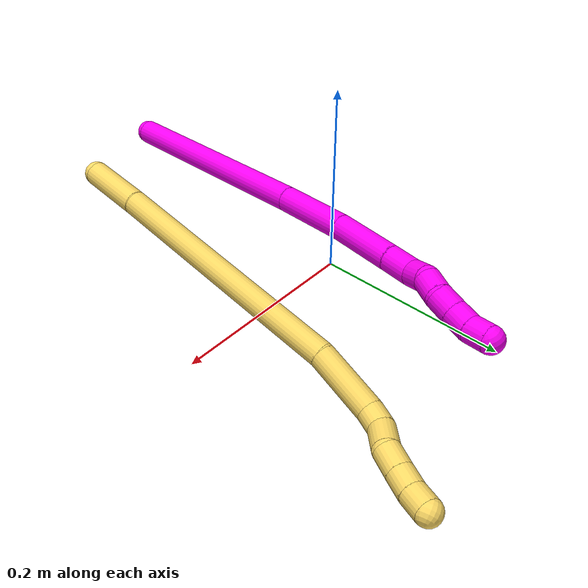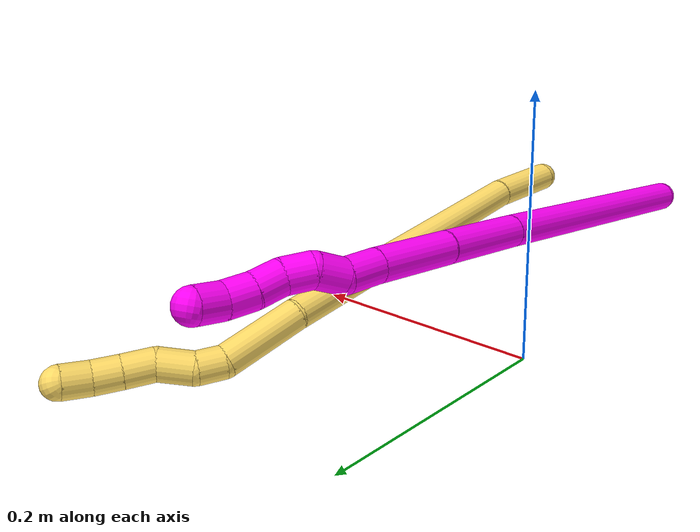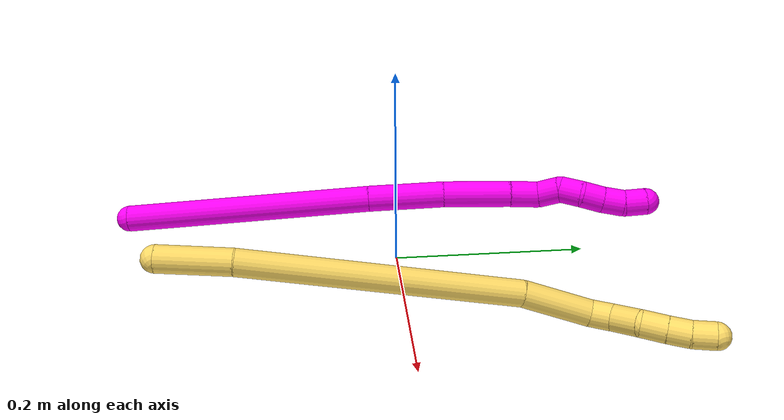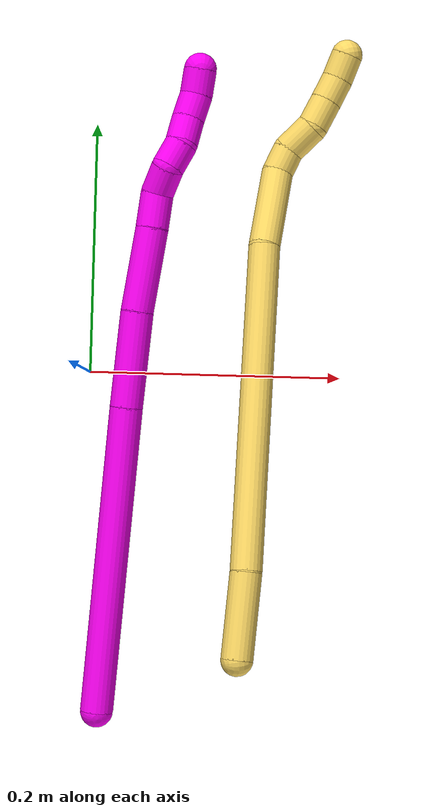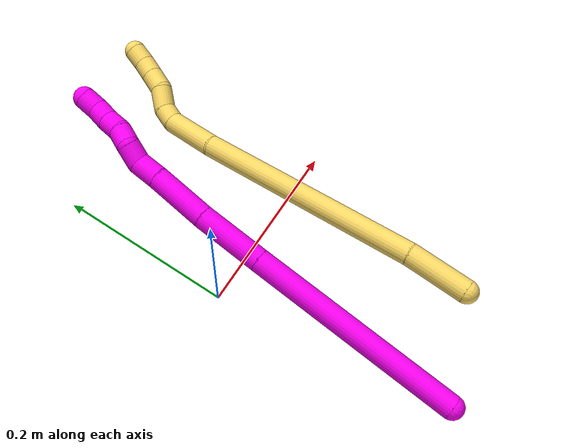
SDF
<sdf version="1.7">
 <world name="default">
  <model name="5">
   <static>0</static>
   <link name="5">
    <collision name="collision-cylinder-e_1_1_4">
     <pose>-0.011076 0.029983 0.010319 -1.23933 -0.33605 0.240849</pose>
     <geometry><cylinder><radius>0.0125</radius><length>0.067176</length></cylinder></geometry>
     <surface>
      <friction><ode><mu>1.16</mu><mu2>1.16</mu2><slip1>0</slip1><slip2>0</slip2></ode></friction>
      <contact><ode><kp>1e+06</kp><kd>1</kd><max_vel>0</max_vel><min_depth>0.001</min_depth></ode></contact>
     </surface>
    </collision>
    <visual name="visual-cylinder-e_1_1_4">
     <pose>-0.011076 0.029983 0.010319 -1.23933 -0.33605 0.240849</pose>
     <geometry><cylinder><radius>0.0125</radius><length>0.067176</length></cylinder></geometry>
     <material><ambient>1 0.858824 0.4 1</ambient></material>
    </visual>
    <collision name="collision-cylinder-e_2_4_5">
     <pose>-0.05094 0.178848 0.060157 -1.24987 -0.225871 0.163272</pose>
     <geometry><cylinder><radius>0.0125</radius><length>0.257087</length></cylinder></geometry>
     <surface>
      <friction><ode><mu>1.16</mu><mu2>1.16</mu2><slip1>0</slip1><slip2>0</slip2></ode></friction>
      <contact><ode><kp>1e+06</kp><kd>1</kd><max_vel>0</max_vel><min_depth>0.001</min_depth></ode></contact>
     </surface>
    </collision>
    <visual name="visual-cylinder-e_2_4_5">
     <pose>-0.05094 0.178848 0.060157 -1.24987 -0.225871 0.163272</pose>
     <geometry><cylinder><radius>0.0125</radius><length>0.257087</length></cylinder></geometry>
     <material><ambient>1 0.858824 0.4 1</ambient></material>
    </visual>
    <collision name="collision-cylinder-e_3_5_6">
     <pose>-0.084088 0.326309 0.114238 -1.09956 -0.135103 0.08287</pose>
     <geometry><cylinder><radius>0.0125</radius><length>0.064739</length></cylinder></geometry>
     <surface>
      <friction><ode><mu>1.16</mu><mu2>1.16</mu2><slip1>0</slip1><slip2>0</slip2></ode></friction>
      <contact><ode><kp>1e+06</kp><kd>1</kd><max_vel>0</max_vel><min_depth>0.001</min_depth></ode></contact>
     </surface>
    </collision>
    <visual name="visual-cylinder-e_3_5_6">
     <pose>-0.084088 0.326309 0.114238 -1.09956 -0.135103 0.08287</pose>
     <geometry><cylinder><radius>0.0125</radius><length>0.064739</length></cylinder></geometry>
     <material><ambient>1 0.858824 0.4 1</ambient></material>
    </visual>
    <collision name="collision-cylinder-e_4_6_7">
     <pose>-0.092929 0.362057 0.13462 -0.888862 -0.45181 0.218023</pose>
     <geometry><cylinder><radius>0.0125</radius><length>0.02053</length></cylinder></geometry>
     <surface>
      <friction><ode><mu>1.16</mu><mu2>1.16</mu2><slip1>0</slip1><slip2>0</slip2></ode></friction>
      <contact><ode><kp>1e+06</kp><kd>1</kd><max_vel>0</max_vel><min_depth>0.001</min_depth></ode></contact>
     </surface>
    </collision>
    <visual name="visual-cylinder-e_4_6_7">
     <pose>-0.092929 0.362057 0.13462 -0.888862 -0.45181 0.218023</pose>
     <geometry><cylinder><radius>0.0125</radius><length>0.02053</length></cylinder></geometry>
     <material><ambient>1 0.858824 0.4 1</ambient></material>
    </visual>
    <collision name="collision-cylinder-e_5_7_8">
     <pose>-0.105926 0.373882 0.149602 -0.470155 -0.692006 0.172259</pose>
     <geometry><cylinder><radius>0.0125</radius><length>0.026691</length></cylinder></geometry>
     <surface>
      <friction><ode><mu>1.16</mu><mu2>1.16</mu2><slip1>0</slip1><slip2>0</slip2></ode></friction>
      <contact><ode><kp>1e+06</kp><kd>1</kd><max_vel>0</max_vel><min_depth>0.001</min_depth></ode></contact>
     </surface>
    </collision>
    <visual name="visual-cylinder-e_5_7_8">
     <pose>-0.105926 0.373882 0.149602 -0.470155 -0.692006 0.172259</pose>
     <geometry><cylinder><radius>0.0125</radius><length>0.026691</length></cylinder></geometry>
     <material><ambient>1 0.858824 0.4 1</ambient></material>
    </visual>
    <collision name="collision-cylinder-e_6_8_9">
     <pose>-0.119345 0.386341 0.165675 -0.845865 -0.439585 0.20043</pose>
     <geometry><cylinder><radius>0.0125</radius><length>0.023042</length></cylinder></geometry>
     <surface>
      <friction><ode><mu>1.16</mu><mu2>1.16</mu2><slip1>0</slip1><slip2>0</slip2></ode></friction>
      <contact><ode><kp>1e+06</kp><kd>1</kd><max_vel>0</max_vel><min_depth>0.001</min_depth></ode></contact>
     </surface>
    </collision>
    <visual name="visual-cylinder-e_6_8_9">
     <pose>-0.119345 0.386341 0.165675 -0.845865 -0.439585 0.20043</pose>
     <geometry><cylinder><radius>0.0125</radius><length>0.023042</length></cylinder></geometry>
     <material><ambient>1 0.858824 0.4 1</ambient></material>
    </visual>
    <collision name="collision-cylinder-e_7_9_10">
     <pose>-0.128803 0.400981 0.17844 -0.862832 -0.468612 0.218877</pose>
     <geometry><cylinder><radius>0.0125</radius><length>0.02017</length></cylinder></geometry>
     <surface>
      <friction><ode><mu>1.16</mu><mu2>1.16</mu2><slip1>0</slip1><slip2>0</slip2></ode></friction>
      <contact><ode><kp>1e+06</kp><kd>1</kd><max_vel>0</max_vel><min_depth>0.001</min_depth></ode></contact>
     </surface>
    </collision>
    <visual name="visual-cylinder-e_7_9_10">
     <pose>-0.128803 0.400981 0.17844 -0.862832 -0.468612 0.218877</pose>
     <geometry><cylinder><radius>0.0125</radius><length>0.02017</length></cylinder></geometry>
     <material><ambient>1 0.858824 0.4 1</ambient></material>
    </visual>
    <collision name="collision-cylinder-e_8_10_2">
     <pose>-0.138834 0.415087 0.189074 -0.988904 -0.561647 0.308543</pose>
     <geometry><cylinder><radius>0.0125</radius><length>0.020565</length></cylinder></geometry>
     <surface>
      <friction><ode><mu>1.16</mu><mu2>1.16</mu2><slip1>0</slip1><slip2>0</slip2></ode></friction>
      <contact><ode><kp>1e+06</kp><kd>1</kd><max_vel>0</max_vel><min_depth>0.001</min_depth></ode></contact>
     </surface>
    </collision>
    <visual name="visual-cylinder-e_8_10_2">
     <pose>-0.138834 0.415087 0.189074 -0.988904 -0.561647 0.308543</pose>
     <geometry><cylinder><radius>0.0125</radius><length>0.020565</length></cylinder></geometry>
     <material><ambient>1 0.858824 0.4 1</ambient></material>
    </visual>
    <collision name="collision-sphere-2">
     <pose>-0.14431 0.422358 0.193857 0 -0 0</pose>
     <geometry><sphere><radius>0.0125</radius></sphere></geometry>
     <surface>
      <friction><ode><mu>1.16</mu><mu2>1.16</mu2><slip1>0</slip1><slip2>0</slip2></ode></friction>
      <contact><ode><kp>1e+06</kp><kd>1</kd><max_vel>0</max_vel><min_depth>0.001</min_depth></ode></contact>
     </surface>
    </collision>
    <visual name="visual-sphere-2">
     <pose>-0.14431 0.422358 0.193857 0 -0 0</pose>
     <geometry><sphere><radius>0.0125</radius></sphere></geometry>
     <material><ambient>1 0.858824 0.4 1</ambient></material>
    </visual>
    <collision name="collision-sphere-10">
     <pose>-0.133358 0.407817 0.184291 0 -0 0</pose>
     <geometry><sphere><radius>0.0125</radius></sphere></geometry>
     <surface>
      <friction><ode><mu>1.16</mu><mu2>1.16</mu2><slip1>0</slip1><slip2>0</slip2></ode></friction>
      <contact><ode><kp>1e+06</kp><kd>1</kd><max_vel>0</max_vel><min_depth>0.001</min_depth></ode></contact>
     </surface>
    </collision>
    <visual name="visual-sphere-10">
     <pose>-0.133358 0.407817 0.184291 0 -0 0</pose>
     <geometry><sphere><radius>0.0125</radius></sphere></geometry>
     <material><ambient>1 0.858824 0.4 1</ambient></material>
    </visual>
    <collision name="collision-sphere-9">
     <pose>-0.124248 0.394145 0.172588 0 -0 0</pose>
     <geometry><sphere><radius>0.0125</radius></sphere></geometry>
     <surface>
      <friction><ode><mu>1.16</mu><mu2>1.16</mu2><slip1>0</slip1><slip2>0</slip2></ode></friction>
      <contact><ode><kp>1e+06</kp><kd>1</kd><max_vel>0</max_vel><min_depth>0.001</min_depth></ode></contact>
     </surface>
    </collision>
    <visual name="visual-sphere-9">
     <pose>-0.124248 0.394145 0.172588 0 -0 0</pose>
     <geometry><sphere><radius>0.0125</radius></sphere></geometry>
     <material><ambient>1 0.858824 0.4 1</ambient></material>
    </visual>
    <collision name="collision-sphere-4">
     <pose>-0.022152 0.059966 0.020638 0 -0 0</pose>
     <geometry><sphere><radius>0.0125</radius></sphere></geometry>
     <surface>
      <friction><ode><mu>1.16</mu><mu2>1.16</mu2><slip1>0</slip1><slip2>0</slip2></ode></friction>
      <contact><ode><kp>1e+06</kp><kd>1</kd><max_vel>0</max_vel><min_depth>0.001</min_depth></ode></contact>
     </surface>
    </collision>
    <visual name="visual-sphere-4">
     <pose>-0.022152 0.059966 0.020638 0 -0 0</pose>
     <geometry><sphere><radius>0.0125</radius></sphere></geometry>
     <material><ambient>1 0.858824 0.4 1</ambient></material>
    </visual>
    <collision name="collision-sphere-1">
     <geometry><sphere><radius>0.0125</radius></sphere></geometry>
     <surface>
      <friction><ode><mu>1.16</mu><mu2>1.16</mu2><slip1>0</slip1><slip2>0</slip2></ode></friction>
      <contact><ode><kp>1e+06</kp><kd>1</kd><max_vel>0</max_vel><min_depth>0.001</min_depth></ode></contact>
     </surface>
    </collision>
    <visual name="visual-sphere-1">
     <geometry><sphere><radius>0.0125</radius></sphere></geometry>
     <material><ambient>1 0.858824 0.4 1</ambient></material>
    </visual>
    <collision name="collision-sphere-8">
     <pose>-0.114442 0.378537 0.158762 0 -0 0</pose>
     <geometry><sphere><radius>0.0125</radius></sphere></geometry>
     <surface>
      <friction><ode><mu>1.16</mu><mu2>1.16</mu2><slip1>0</slip1><slip2>0</slip2></ode></friction>
      <contact><ode><kp>1e+06</kp><kd>1</kd><max_vel>0</max_vel><min_depth>0.001</min_depth></ode></contact>
     </surface>
    </collision>
    <visual name="visual-sphere-8">
     <pose>-0.114442 0.378537 0.158762 0 -0 0</pose>
     <geometry><sphere><radius>0.0125</radius></sphere></geometry>
     <material><ambient>1 0.858824 0.4 1</ambient></material>
    </visual>
    <collision name="collision-sphere-5">
     <pose>-0.079728 0.29773 0.099677 0 -0 0</pose>
     <geometry><sphere><radius>0.0125</radius></sphere></geometry>
     <surface>
      <friction><ode><mu>1.16</mu><mu2>1.16</mu2><slip1>0</slip1><slip2>0</slip2></ode></friction>
      <contact><ode><kp>1e+06</kp><kd>1</kd><max_vel>0</max_vel><min_depth>0.001</min_depth></ode></contact>
     </surface>
    </collision>
    <visual name="visual-sphere-5">
     <pose>-0.079728 0.29773 0.099677 0 -0 0</pose>
     <geometry><sphere><radius>0.0125</radius></sphere></geometry>
     <material><ambient>1 0.858824 0.4 1</ambient></material>
    </visual>
    <collision name="collision-sphere-6">
     <pose>-0.088448 0.354888 0.1288 0 -0 0</pose>
     <geometry><sphere><radius>0.0125</radius></sphere></geometry>
     <surface>
      <friction><ode><mu>1.16</mu><mu2>1.16</mu2><slip1>0</slip1><slip2>0</slip2></ode></friction>
      <contact><ode><kp>1e+06</kp><kd>1</kd><max_vel>0</max_vel><min_depth>0.001</min_depth></ode></contact>
     </surface>
    </collision>
    <visual name="visual-sphere-6">
     <pose>-0.088448 0.354888 0.1288 0 -0 0</pose>
     <geometry><sphere><radius>0.0125</radius></sphere></geometry>
     <material><ambient>1 0.858824 0.4 1</ambient></material>
    </visual>
    <collision name="collision-sphere-7">
     <pose>-0.097411 0.369227 0.140441 0 -0 0</pose>
     <geometry><sphere><radius>0.0125</radius></sphere></geometry>
     <surface>
      <friction><ode><mu>1.16</mu><mu2>1.16</mu2><slip1>0</slip1><slip2>0</slip2></ode></friction>
      <contact><ode><kp>1e+06</kp><kd>1</kd><max_vel>0</max_vel><min_depth>0.001</min_depth></ode></contact>
     </surface>
    </collision>
    <visual name="visual-sphere-7">
     <pose>-0.097411 0.369227 0.140441 0 -0 0</pose>
     <geometry><sphere><radius>0.0125</radius></sphere></geometry>
     <material><ambient>1 0.858824 0.4 1</ambient></material>
    </visual>
    <inertial>
     <pose>-0.064444 0.224114 0.083233 0 -0 0</pose>
     <mass>0.5</mass>
     <inertia>
      <ixx>0.001654</ixx>
      <ixy>0</ixy>
      <ixz>0</ixz>
      <iyy>0.000791</iyy>
      <iyz>0</iyz>
      <izz>-0.00102</izz>
     </inertia>
    </inertial>
   </link>
   <pose>0.123739 -0.218597 0.078493 -2.62881 1.05153 -2.32787</pose>
  </model>
  <model name="10">
   <static>0</static>
   <link name="10">
    <collision name="collision-cylinder-e_1_1_4">
     <pose>-0.015131 0.108359 -0.039736 -1.92228 -0.130359 0.186375</pose>
     <geometry><cylinder><radius>0.0125</radius><length>0.232805</length></cylinder></geometry>
     <surface>
      <friction><ode><mu>1.16</mu><mu2>1.16</mu2><slip1>0</slip1><slip2>0</slip2></ode></friction>
      <contact><ode><kp>1e+06</kp><kd>1</kd><max_vel>0</max_vel><min_depth>0.001</min_depth></ode></contact>
     </surface>
    </collision>
    <visual name="visual-cylinder-e_1_1_4">
     <pose>-0.015131 0.108359 -0.039736 -1.92228 -0.130359 0.186375</pose>
     <geometry><cylinder><radius>0.0125</radius><length>0.232805</length></cylinder></geometry>
     <material><ambient>1 0 0.964706 1</ambient></material>
    </visual>
    <collision name="collision-cylinder-e_2_4_5">
     <pose>-0.034351 0.25045 -0.092474 -1.93869 -0.112625 0.163917</pose>
     <geometry><cylinder><radius>0.0125</radius><length>0.072764</length></cylinder></geometry>
     <surface>
      <friction><ode><mu>1.16</mu><mu2>1.16</mu2><slip1>0</slip1><slip2>0</slip2></ode></friction>
      <contact><ode><kp>1e+06</kp><kd>1</kd><max_vel>0</max_vel><min_depth>0.001</min_depth></ode></contact>
     </surface>
    </collision>
    <visual name="visual-cylinder-e_2_4_5">
     <pose>-0.034351 0.25045 -0.092474 -1.93869 -0.112625 0.163917</pose>
     <geometry><cylinder><radius>0.0125</radius><length>0.072764</length></cylinder></geometry>
     <material><ambient>1 0 0.964706 1</ambient></material>
    </visual>
    <collision name="collision-cylinder-e_3_5_6">
     <pose>-0.039868 0.313852 -0.11747 -1.95495 -0.044576 0.066086</pose>
     <geometry><cylinder><radius>0.0125</radius><length>0.064068</length></cylinder></geometry>
     <surface>
      <friction><ode><mu>1.16</mu><mu2>1.16</mu2><slip1>0</slip1><slip2>0</slip2></ode></friction>
      <contact><ode><kp>1e+06</kp><kd>1</kd><max_vel>0</max_vel><min_depth>0.001</min_depth></ode></contact>
     </surface>
    </collision>
    <visual name="visual-cylinder-e_3_5_6">
     <pose>-0.039868 0.313852 -0.11747 -1.95495 -0.044576 0.066086</pose>
     <geometry><cylinder><radius>0.0125</radius><length>0.064068</length></cylinder></geometry>
     <material><ambient>1 0 0.964706 1</ambient></material>
    </visual>
    <collision name="collision-cylinder-e_4_6_7">
     <pose>-0.042201 0.355931 -0.135211 -2.00459 -0.066141 0.103476</pose>
     <geometry><cylinder><radius>0.0125</radius><length>0.02741</length></cylinder></geometry>
     <surface>
      <friction><ode><mu>1.16</mu><mu2>1.16</mu2><slip1>0</slip1><slip2>0</slip2></ode></friction>
      <contact><ode><kp>1e+06</kp><kd>1</kd><max_vel>0</max_vel><min_depth>0.001</min_depth></ode></contact>
     </surface>
    </collision>
    <visual name="visual-cylinder-e_4_6_7">
     <pose>-0.042201 0.355931 -0.135211 -2.00459 -0.066141 0.103476</pose>
     <geometry><cylinder><radius>0.0125</radius><length>0.02741</length></cylinder></geometry>
     <material><ambient>1 0 0.964706 1</ambient></material>
    </visual>
    <collision name="collision-cylinder-e_5_7_8">
     <pose>-0.042008 0.379278 -0.140843 -1.56019 0.100123 -0.099069</pose>
     <geometry><cylinder><radius>0.0125</radius><length>0.021988</length></cylinder></geometry>
     <surface>
      <friction><ode><mu>1.16</mu><mu2>1.16</mu2><slip1>0</slip1><slip2>0</slip2></ode></friction>
      <contact><ode><kp>1e+06</kp><kd>1</kd><max_vel>0</max_vel><min_depth>0.001</min_depth></ode></contact>
     </surface>
    </collision>
    <visual name="visual-cylinder-e_5_7_8">
     <pose>-0.042008 0.379278 -0.140843 -1.56019 0.100123 -0.099069</pose>
     <geometry><cylinder><radius>0.0125</radius><length>0.021988</length></cylinder></geometry>
     <material><ambient>1 0 0.964706 1</ambient></material>
    </visual>
    <collision name="collision-cylinder-e_6_8_9">
     <pose>-0.037826 0.399161 -0.144676 -1.98657 0.305455 -0.463939</pose>
     <geometry><cylinder><radius>0.0125</radius><length>0.020504</length></cylinder></geometry>
     <surface>
      <friction><ode><mu>1.16</mu><mu2>1.16</mu2><slip1>0</slip1><slip2>0</slip2></ode></friction>
      <contact><ode><kp>1e+06</kp><kd>1</kd><max_vel>0</max_vel><min_depth>0.001</min_depth></ode></contact>
     </surface>
    </collision>
    <visual name="visual-cylinder-e_6_8_9">
     <pose>-0.037826 0.399161 -0.144676 -1.98657 0.305455 -0.463939</pose>
     <geometry><cylinder><radius>0.0125</radius><length>0.020504</length></cylinder></geometry>
     <material><ambient>1 0 0.964706 1</ambient></material>
    </visual>
    <collision name="collision-cylinder-e_7_9_10">
     <pose>-0.033896 0.416327 -0.154491 -2.19043 0.083635 -0.162133</pose>
     <geometry><cylinder><radius>0.0125</radius><length>0.020271</length></cylinder></geometry>
     <surface>
      <friction><ode><mu>1.16</mu><mu2>1.16</mu2><slip1>0</slip1><slip2>0</slip2></ode></friction>
      <contact><ode><kp>1e+06</kp><kd>1</kd><max_vel>0</max_vel><min_depth>0.001</min_depth></ode></contact>
     </surface>
    </collision>
    <visual name="visual-cylinder-e_7_9_10">
     <pose>-0.033896 0.416327 -0.154491 -2.19043 0.083635 -0.162133</pose>
     <geometry><cylinder><radius>0.0125</radius><length>0.020271</length></cylinder></geometry>
     <material><ambient>1 0 0.964706 1</ambient></material>
    </visual>
    <collision name="collision-cylinder-e_8_10_11">
     <pose>-0.031846 0.433398 -0.164955 -2.05018 0.120101 -0.197385</pose>
     <geometry><cylinder><radius>0.0125</radius><length>0.020089</length></cylinder></geometry>
     <surface>
      <friction><ode><mu>1.16</mu><mu2>1.16</mu2><slip1>0</slip1><slip2>0</slip2></ode></friction>
      <contact><ode><kp>1e+06</kp><kd>1</kd><max_vel>0</max_vel><min_depth>0.001</min_depth></ode></contact>
     </surface>
    </collision>
    <visual name="visual-cylinder-e_8_10_11">
     <pose>-0.031846 0.433398 -0.164955 -2.05018 0.120101 -0.197385</pose>
     <geometry><cylinder><radius>0.0125</radius><length>0.020089</length></cylinder></geometry>
     <material><ambient>1 0 0.964706 1</ambient></material>
    </visual>
    <collision name="collision-cylinder-e_9_11_2">
     <pose>-0.031412 0.45181 -0.172544 -1.8737 -0.076622 0.10418</pose>
     <geometry><cylinder><radius>0.0125</radius><length>0.0201</length></cylinder></geometry>
     <surface>
      <friction><ode><mu>1.16</mu><mu2>1.16</mu2><slip1>0</slip1><slip2>0</slip2></ode></friction>
      <contact><ode><kp>1e+06</kp><kd>1</kd><max_vel>0</max_vel><min_depth>0.001</min_depth></ode></contact>
     </surface>
    </collision>
    <visual name="visual-cylinder-e_9_11_2">
     <pose>-0.031412 0.45181 -0.172544 -1.8737 -0.076622 0.10418</pose>
     <geometry><cylinder><radius>0.0125</radius><length>0.0201</length></cylinder></geometry>
     <material><ambient>1 0 0.964706 1</ambient></material>
    </visual>
    <collision name="collision-sphere-2">
     <pose>-0.032181 0.461375 -0.175533 0 -0 0</pose>
     <geometry><sphere><radius>0.0125</radius></sphere></geometry>
     <surface>
      <friction><ode><mu>1.16</mu><mu2>1.16</mu2><slip1>0</slip1><slip2>0</slip2></ode></friction>
      <contact><ode><kp>1e+06</kp><kd>1</kd><max_vel>0</max_vel><min_depth>0.001</min_depth></ode></contact>
     </surface>
    </collision>
    <visual name="visual-sphere-2">
     <pose>-0.032181 0.461375 -0.175533 0 -0 0</pose>
     <geometry><sphere><radius>0.0125</radius></sphere></geometry>
     <material><ambient>1 0 0.964706 1</ambient></material>
    </visual>
    <collision name="collision-sphere-11">
     <pose>-0.030642 0.442246 -0.169555 0 -0 0</pose>
     <geometry><sphere><radius>0.0125</radius></sphere></geometry>
     <surface>
      <friction><ode><mu>1.16</mu><mu2>1.16</mu2><slip1>0</slip1><slip2>0</slip2></ode></friction>
      <contact><ode><kp>1e+06</kp><kd>1</kd><max_vel>0</max_vel><min_depth>0.001</min_depth></ode></contact>
     </surface>
    </collision>
    <visual name="visual-sphere-11">
     <pose>-0.030642 0.442246 -0.169555 0 -0 0</pose>
     <geometry><sphere><radius>0.0125</radius></sphere></geometry>
     <material><ambient>1 0 0.964706 1</ambient></material>
    </visual>
    <collision name="collision-sphere-10">
     <pose>-0.033049 0.424549 -0.160356 0 -0 0</pose>
     <geometry><sphere><radius>0.0125</radius></sphere></geometry>
     <surface>
      <friction><ode><mu>1.16</mu><mu2>1.16</mu2><slip1>0</slip1><slip2>0</slip2></ode></friction>
      <contact><ode><kp>1e+06</kp><kd>1</kd><max_vel>0</max_vel><min_depth>0.001</min_depth></ode></contact>
     </surface>
    </collision>
    <visual name="visual-sphere-10">
     <pose>-0.033049 0.424549 -0.160356 0 -0 0</pose>
     <geometry><sphere><radius>0.0125</radius></sphere></geometry>
     <material><ambient>1 0 0.964706 1</ambient></material>
    </visual>
    <collision name="collision-sphere-9">
     <pose>-0.034743 0.408105 -0.148625 0 -0 0</pose>
     <geometry><sphere><radius>0.0125</radius></sphere></geometry>
     <surface>
      <friction><ode><mu>1.16</mu><mu2>1.16</mu2><slip1>0</slip1><slip2>0</slip2></ode></friction>
      <contact><ode><kp>1e+06</kp><kd>1</kd><max_vel>0</max_vel><min_depth>0.001</min_depth></ode></contact>
     </surface>
    </collision>
    <visual name="visual-sphere-9">
     <pose>-0.034743 0.408105 -0.148625 0 -0 0</pose>
     <geometry><sphere><radius>0.0125</radius></sphere></geometry>
     <material><ambient>1 0 0.964706 1</ambient></material>
    </visual>
    <collision name="collision-sphere-4">
     <pose>-0.030262 0.216717 -0.079472 0 -0 0</pose>
     <geometry><sphere><radius>0.0125</radius></sphere></geometry>
     <surface>
      <friction><ode><mu>1.16</mu><mu2>1.16</mu2><slip1>0</slip1><slip2>0</slip2></ode></friction>
      <contact><ode><kp>1e+06</kp><kd>1</kd><max_vel>0</max_vel><min_depth>0.001</min_depth></ode></contact>
     </surface>
    </collision>
    <visual name="visual-sphere-4">
     <pose>-0.030262 0.216717 -0.079472 0 -0 0</pose>
     <geometry><sphere><radius>0.0125</radius></sphere></geometry>
     <material><ambient>1 0 0.964706 1</ambient></material>
    </visual>
    <collision name="collision-sphere-1">
     <geometry><sphere><radius>0.0125</radius></sphere></geometry>
     <surface>
      <friction><ode><mu>1.16</mu><mu2>1.16</mu2><slip1>0</slip1><slip2>0</slip2></ode></friction>
      <contact><ode><kp>1e+06</kp><kd>1</kd><max_vel>0</max_vel><min_depth>0.001</min_depth></ode></contact>
     </surface>
    </collision>
    <visual name="visual-sphere-1">
     <geometry><sphere><radius>0.0125</radius></sphere></geometry>
     <material><ambient>1 0 0.964706 1</ambient></material>
    </visual>
    <collision name="collision-sphere-8">
     <pose>-0.040909 0.390216 -0.140727 0 -0 0</pose>
     <geometry><sphere><radius>0.0125</radius></sphere></geometry>
     <surface>
      <friction><ode><mu>1.16</mu><mu2>1.16</mu2><slip1>0</slip1><slip2>0</slip2></ode></friction>
      <contact><ode><kp>1e+06</kp><kd>1</kd><max_vel>0</max_vel><min_depth>0.001</min_depth></ode></contact>
     </surface>
    </collision>
    <visual name="visual-sphere-8">
     <pose>-0.040909 0.390216 -0.140727 0 -0 0</pose>
     <geometry><sphere><radius>0.0125</radius></sphere></geometry>
     <material><ambient>1 0 0.964706 1</ambient></material>
    </visual>
    <collision name="collision-sphere-5">
     <pose>-0.03844 0.284182 -0.105476 0 -0 0</pose>
     <geometry><sphere><radius>0.0125</radius></sphere></geometry>
     <surface>
      <friction><ode><mu>1.16</mu><mu2>1.16</mu2><slip1>0</slip1><slip2>0</slip2></ode></friction>
      <contact><ode><kp>1e+06</kp><kd>1</kd><max_vel>0</max_vel><min_depth>0.001</min_depth></ode></contact>
     </surface>
    </collision>
    <visual name="visual-sphere-5">
     <pose>-0.03844 0.284182 -0.105476 0 -0 0</pose>
     <geometry><sphere><radius>0.0125</radius></sphere></geometry>
     <material><ambient>1 0 0.964706 1</ambient></material>
    </visual>
    <collision name="collision-sphere-6">
     <pose>-0.041295 0.343522 -0.129463 0 -0 0</pose>
     <geometry><sphere><radius>0.0125</radius></sphere></geometry>
     <surface>
      <friction><ode><mu>1.16</mu><mu2>1.16</mu2><slip1>0</slip1><slip2>0</slip2></ode></friction>
      <contact><ode><kp>1e+06</kp><kd>1</kd><max_vel>0</max_vel><min_depth>0.001</min_depth></ode></contact>
     </surface>
    </collision>
    <visual name="visual-sphere-6">
     <pose>-0.041295 0.343522 -0.129463 0 -0 0</pose>
     <geometry><sphere><radius>0.0125</radius></sphere></geometry>
     <material><ambient>1 0 0.964706 1</ambient></material>
    </visual>
    <collision name="collision-sphere-7">
     <pose>-0.043107 0.368339 -0.140959 0 -0 0</pose>
     <geometry><sphere><radius>0.0125</radius></sphere></geometry>
     <surface>
      <friction><ode><mu>1.16</mu><mu2>1.16</mu2><slip1>0</slip1><slip2>0</slip2></ode></friction>
      <contact><ode><kp>1e+06</kp><kd>1</kd><max_vel>0</max_vel><min_depth>0.001</min_depth></ode></contact>
     </surface>
    </collision>
    <visual name="visual-sphere-7">
     <pose>-0.043107 0.368339 -0.140959 0 -0 0</pose>
     <geometry><sphere><radius>0.0125</radius></sphere></geometry>
     <material><ambient>1 0 0.964706 1</ambient></material>
    </visual>
    <inertial>
     <pose>-0.026781 0.232132 -0.086378 0 -0 0</pose>
     <mass>0.5</mass>
     <inertia>
      <ixx>0.001301</ixx>
      <ixy>0</ixy>
      <ixz>0</ixz>
      <iyy>-0.000122</iyy>
      <iyz>0</iyz>
      <izz>-0.000923</izz>
     </inertia>
    </inertial>
   </link>
   <pose>0.017814 -0.260952 0.067887 0.401368 0.229652 -0.189205</pose>
  </model>
 </world>
</sdf>
